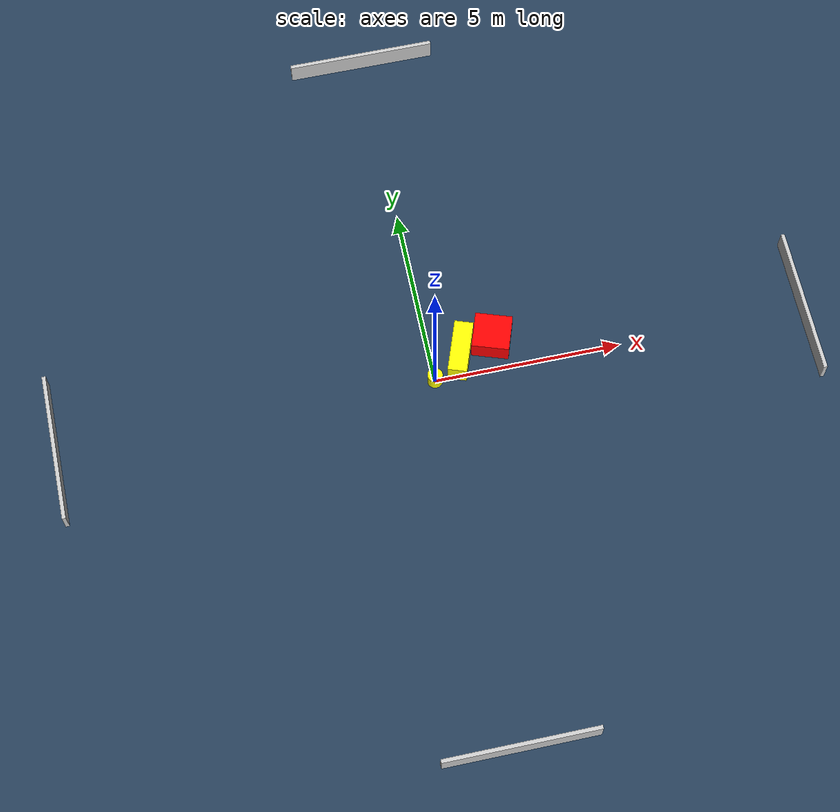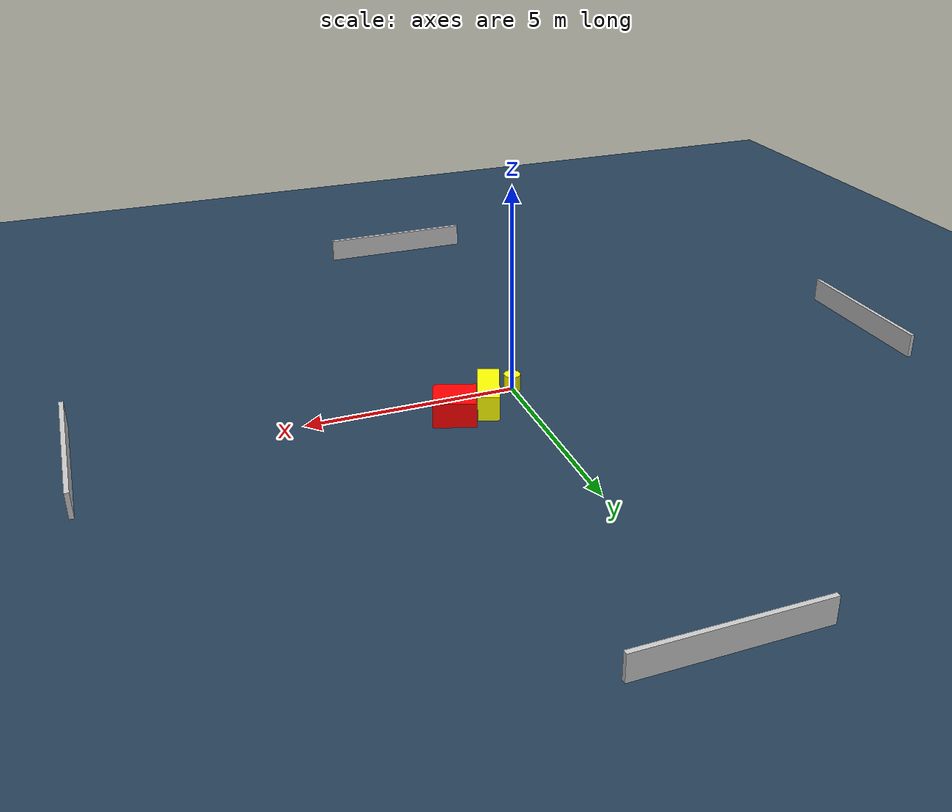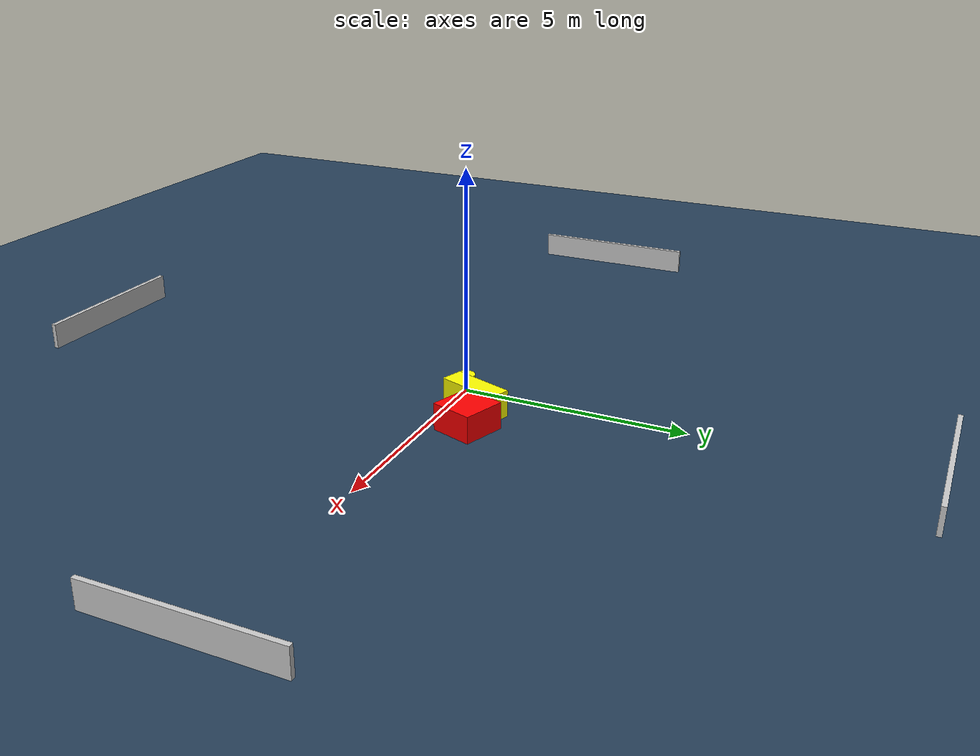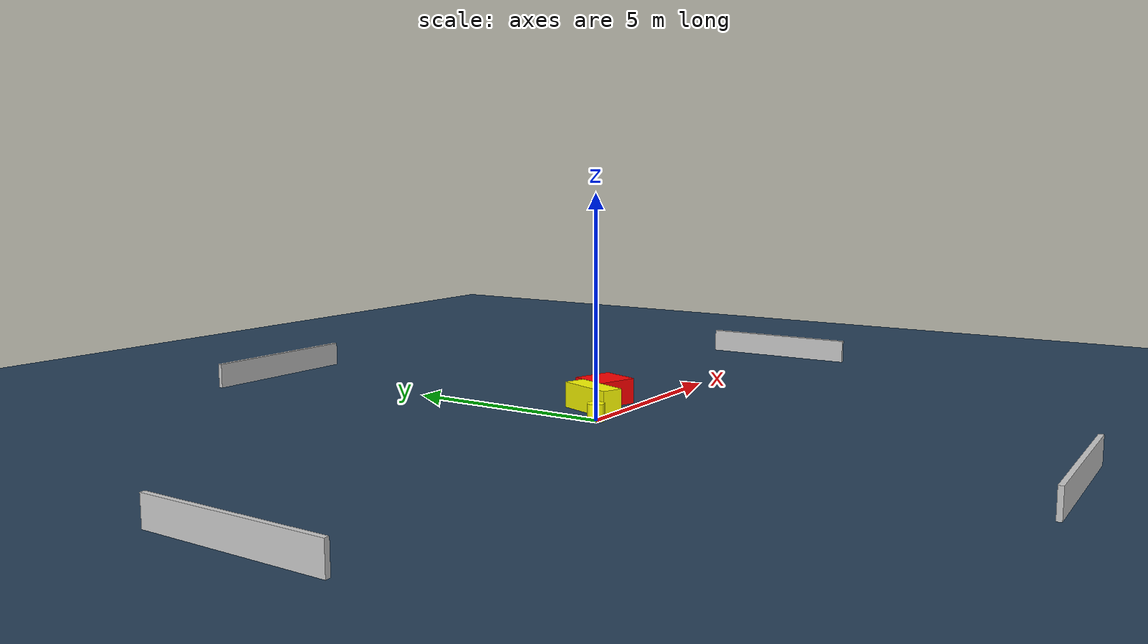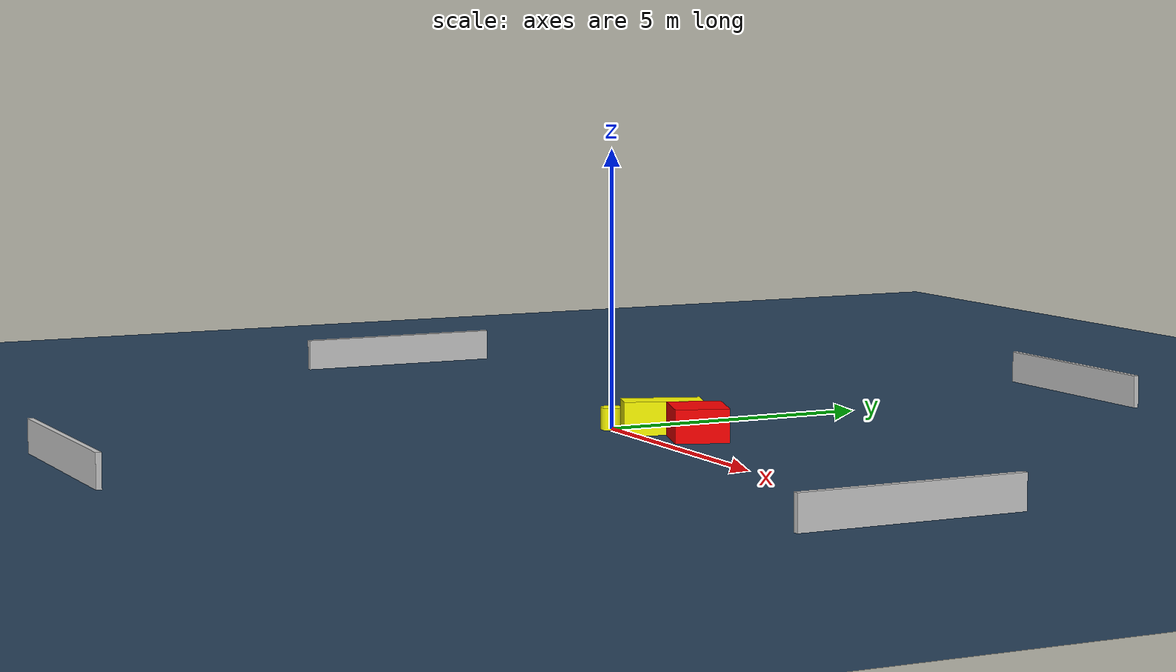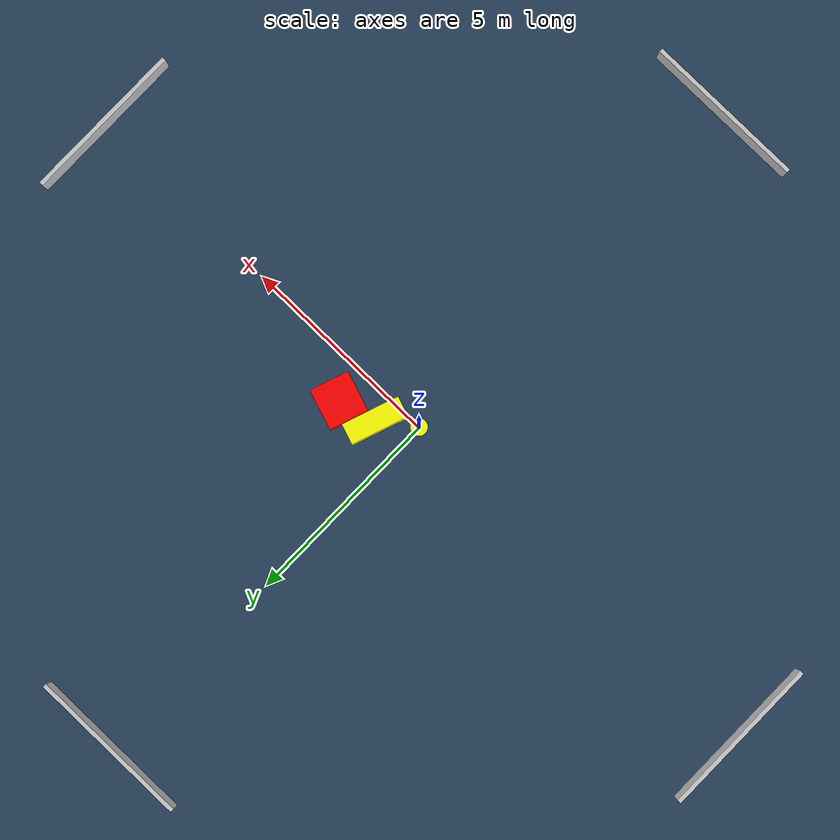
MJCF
<?xml version="1.0" ?>
<mujoco model="generated_environment">
  <option timestep="0.01" integrator="RK4" cone="elliptic"/>
  <default>
    <geom density="1"/>
  </default>
  <asset>
    <texture builtin="gradient" height="3072" name="skybox" rgb1="0.3 0.5 0.7" rgb2="0 0 0" type="skybox" width="512"/>
    <texture builtin="checker" height="300" name="groundplane" rgb1="0.2 0.3 0.4" rgb2="0.1 0.2 0.3" type="2d" width="300"/>
    <material name="groundplane" reflectance="0.2" texrepeat="5 5" texture="groundplane"/>
  </asset>
  <worldbody>
    <light dir="0 0 -1" directional="true" pos="0 0 1.5"/>
    <geom condim="3" friction="0.5 0.005 0.001" material="groundplane" name="floor" pos="0 0 0" size="0 0 0.05" type="plane"/>
    <body name="walls">
      <geom name="wall_1" condim="4" pos="-10.0 0.0 0.3" rgba="0.800000011920929 0.800000011920929 0.800000011920929 1.0" size="0.05 2.0 0.3" type="box"/>
      <geom name="wall_2" condim="4" pos="10.0 0.0 0.3" rgba="0.800000011920929 0.800000011920929 0.800000011920929 1.0" size="0.05 2.0 0.3" type="box"/>
      <geom name="wall_3" condim="4" pos="0.0 -10.0 0.3" rgba="0.800000011920929 0.800000011920929 0.800000011920929 1.0" size="2.0 0.05 0.3" type="box"/>
      <geom name="wall_4" condim="4" pos="0.0 10.0 0.3" rgba="0.800000011920929 0.800000011920929 0.800000011920929 1.0" size="2.0 0.05 0.3" type="box"/>
    </body>
    <body name="robot">
      <joint name="joint_x" type="slide" pos="0 0 0" axis="1 0 0"/>
      <joint name="joint_y" type="slide" pos="0 0 0" axis="0 1 0"/>
      <geom name="robot" type="cylinder" pos="0.0 0.0 0.2" size="0.2 0.2 0.0" mass="5.0" friction="1.0 0.005 0.0001" condim="4" rgba="1.0 1.0 0.0 1.0"/>
    </body>
    <body name="obstacle_1_movable">
      <geom name="obstacle_1_movable" condim="4" pos="0.8130299108442837 0.5892366566331408 0.3" euler="0 0 70.37295673469505" friction="0.0 0.005 0.001" rgba="1.0 1.0 0.0 1.0" size="0.7098727586627032 0.2535865475488443 0.3" type="box" mass="0.1"/>
      <joint type="free"/>
    </body>
    <body name="obstacle_2_static">
      <geom name="obstacle_2_static" condim="4" pos="1.7153188251595468 0.8336816975495129 0.3" euler="0 0 341.16628509356565" friction="0.0 0.005 0.001" rgba="1.0 0.0 0.0 1.0" size="0.4960824155894065 0.4815130000390713 0.3" type="box"/>
    </body>
  </worldbody>
  <actuator>
    <motor name="actuator_x" joint="joint_x" gear="1" ctrlrange="-1 1"/>
    <motor name="actuator_y" joint="joint_y" gear="1" ctrlrange="-1 1"/>
  </actuator>
</mujoco>
